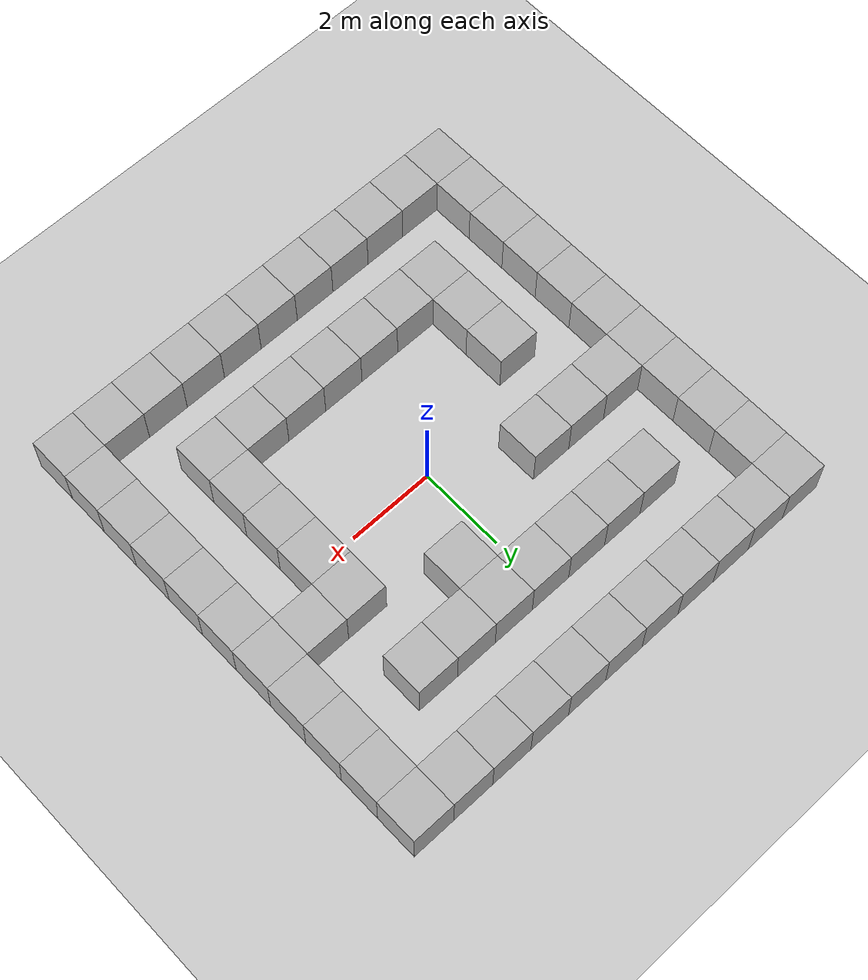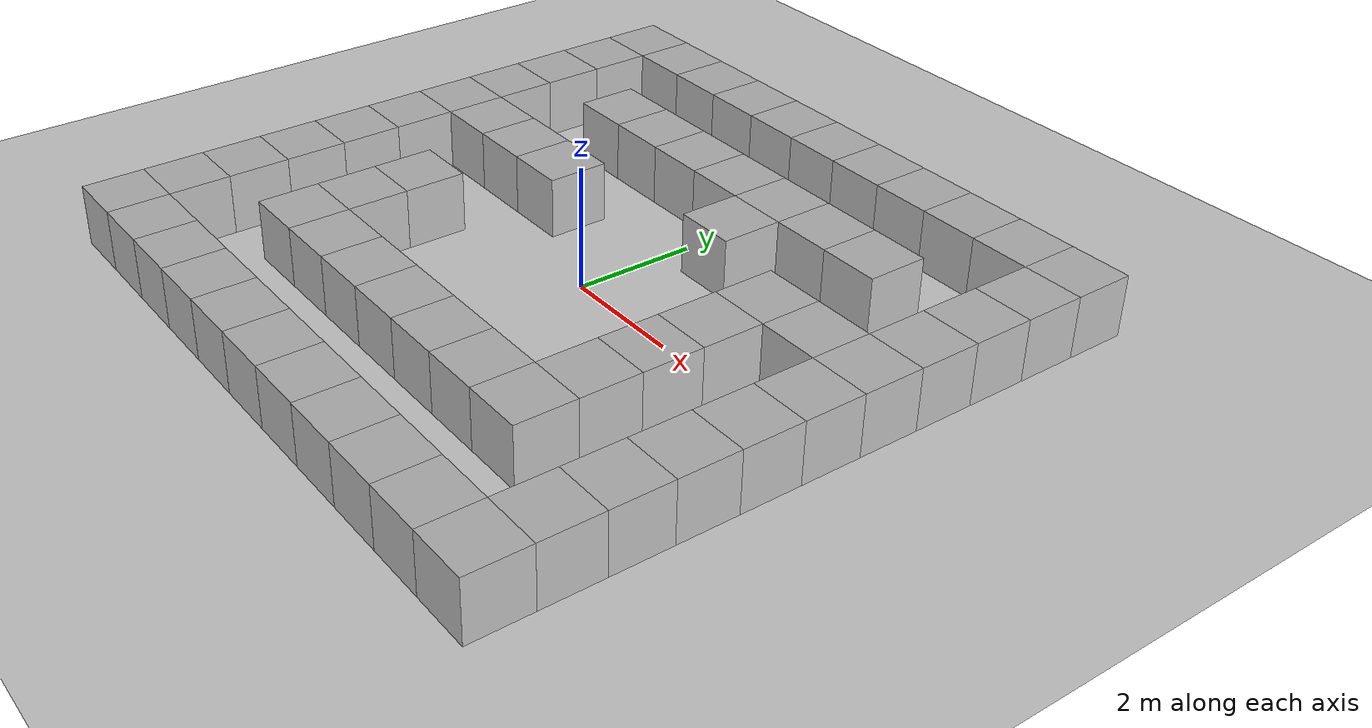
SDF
<?xml version="1.0" ?>
<sdf version="1.6">
  <world name="maze_world">

  <plugin name="gazebo_ros_init" filename="libgazebo_ros_init.so"/>
  <plugin name="gazebo_ros_factory" filename="libgazebo_ros_factory.so"/>

  <include>
    <uri>model://ground_plane</uri>
  </include>

  <include>
    <uri>model://sun</uri>
  </include>

    <model name='wall_-5.0_-5.0'>
      <static>true</static>
      <link name='link'>
        <pose>-5.0 -5.0 0.5 0 0 0</pose>
        <collision name='collision'>
          <geometry>
            <box><size>1.0 1.0 1</size></box>
          </geometry>
        </collision>
        <visual name='visual'>
          <geometry>
            <box><size>1.0 1.0 1</size></box>
          </geometry>
        </visual>
      </link>
    </model>

    <model name='wall_-4.0_-5.0'>
      <static>true</static>
      <link name='link'>
        <pose>-4.0 -5.0 0.5 0 0 0</pose>
        <collision name='collision'>
          <geometry>
            <box><size>1.0 1.0 1</size></box>
          </geometry>
        </collision>
        <visual name='visual'>
          <geometry>
            <box><size>1.0 1.0 1</size></box>
          </geometry>
        </visual>
      </link>
    </model>

    <model name='wall_-3.0_-5.0'>
      <static>true</static>
      <link name='link'>
        <pose>-3.0 -5.0 0.5 0 0 0</pose>
        <collision name='collision'>
          <geometry>
            <box><size>1.0 1.0 1</size></box>
          </geometry>
        </collision>
        <visual name='visual'>
          <geometry>
            <box><size>1.0 1.0 1</size></box>
          </geometry>
        </visual>
      </link>
    </model>

    <model name='wall_-2.0_-5.0'>
      <static>true</static>
      <link name='link'>
        <pose>-2.0 -5.0 0.5 0 0 0</pose>
        <collision name='collision'>
          <geometry>
            <box><size>1.0 1.0 1</size></box>
          </geometry>
        </collision>
        <visual name='visual'>
          <geometry>
            <box><size>1.0 1.0 1</size></box>
          </geometry>
        </visual>
      </link>
    </model>

    <model name='wall_-1.0_-5.0'>
      <static>true</static>
      <link name='link'>
        <pose>-1.0 -5.0 0.5 0 0 0</pose>
        <collision name='collision'>
          <geometry>
            <box><size>1.0 1.0 1</size></box>
          </geometry>
        </collision>
        <visual name='visual'>
          <geometry>
            <box><size>1.0 1.0 1</size></box>
          </geometry>
        </visual>
      </link>
    </model>

    <model name='wall_0.0_-5.0'>
      <static>true</static>
      <link name='link'>
        <pose>0.0 -5.0 0.5 0 0 0</pose>
        <collision name='collision'>
          <geometry>
            <box><size>1.0 1.0 1</size></box>
          </geometry>
        </collision>
        <visual name='visual'>
          <geometry>
            <box><size>1.0 1.0 1</size></box>
          </geometry>
        </visual>
      </link>
    </model>

    <model name='wall_1.0_-5.0'>
      <static>true</static>
      <link name='link'>
        <pose>1.0 -5.0 0.5 0 0 0</pose>
        <collision name='collision'>
          <geometry>
            <box><size>1.0 1.0 1</size></box>
          </geometry>
        </collision>
        <visual name='visual'>
          <geometry>
            <box><size>1.0 1.0 1</size></box>
          </geometry>
        </visual>
      </link>
    </model>

    <model name='wall_2.0_-5.0'>
      <static>true</static>
      <link name='link'>
        <pose>2.0 -5.0 0.5 0 0 0</pose>
        <collision name='collision'>
          <geometry>
            <box><size>1.0 1.0 1</size></box>
          </geometry>
        </collision>
        <visual name='visual'>
          <geometry>
            <box><size>1.0 1.0 1</size></box>
          </geometry>
        </visual>
      </link>
    </model>

    <model name='wall_3.0_-5.0'>
      <static>true</static>
      <link name='link'>
        <pose>3.0 -5.0 0.5 0 0 0</pose>
        <collision name='collision'>
          <geometry>
            <box><size>1.0 1.0 1</size></box>
          </geometry>
        </collision>
        <visual name='visual'>
          <geometry>
            <box><size>1.0 1.0 1</size></box>
          </geometry>
        </visual>
      </link>
    </model>

    <model name='wall_4.0_-5.0'>
      <static>true</static>
      <link name='link'>
        <pose>4.0 -5.0 0.5 0 0 0</pose>
        <collision name='collision'>
          <geometry>
            <box><size>1.0 1.0 1</size></box>
          </geometry>
        </collision>
        <visual name='visual'>
          <geometry>
            <box><size>1.0 1.0 1</size></box>
          </geometry>
        </visual>
      </link>
    </model>

    <model name='wall_5.0_-5.0'>
      <static>true</static>
      <link name='link'>
        <pose>5.0 -5.0 0.5 0 0 0</pose>
        <collision name='collision'>
          <geometry>
            <box><size>1.0 1.0 1</size></box>
          </geometry>
        </collision>
        <visual name='visual'>
          <geometry>
            <box><size>1.0 1.0 1</size></box>
          </geometry>
        </visual>
      </link>
    </model>

    <model name='wall_-5.0_-4.0'>
      <static>true</static>
      <link name='link'>
        <pose>-5.0 -4.0 0.5 0 0 0</pose>
        <collision name='collision'>
          <geometry>
            <box><size>1.0 1.0 1</size></box>
          </geometry>
        </collision>
        <visual name='visual'>
          <geometry>
            <box><size>1.0 1.0 1</size></box>
          </geometry>
        </visual>
      </link>
    </model>

    <model name='wall_5.0_-4.0'>
      <static>true</static>
      <link name='link'>
        <pose>5.0 -4.0 0.5 0 0 0</pose>
        <collision name='collision'>
          <geometry>
            <box><size>1.0 1.0 1</size></box>
          </geometry>
        </collision>
        <visual name='visual'>
          <geometry>
            <box><size>1.0 1.0 1</size></box>
          </geometry>
        </visual>
      </link>
    </model>

    <model name='wall_-5.0_-3.0'>
      <static>true</static>
      <link name='link'>
        <pose>-5.0 -3.0 0.5 0 0 0</pose>
        <collision name='collision'>
          <geometry>
            <box><size>1.0 1.0 1</size></box>
          </geometry>
        </collision>
        <visual name='visual'>
          <geometry>
            <box><size>1.0 1.0 1</size></box>
          </geometry>
        </visual>
      </link>
    </model>

    <model name='wall_-3.0_-3.0'>
      <static>true</static>
      <link name='link'>
        <pose>-3.0 -3.0 0.5 0 0 0</pose>
        <collision name='collision'>
          <geometry>
            <box><size>1.0 1.0 1</size></box>
          </geometry>
        </collision>
        <visual name='visual'>
          <geometry>
            <box><size>1.0 1.0 1</size></box>
          </geometry>
        </visual>
      </link>
    </model>

    <model name='wall_-2.0_-3.0'>
      <static>true</static>
      <link name='link'>
        <pose>-2.0 -3.0 0.5 0 0 0</pose>
        <collision name='collision'>
          <geometry>
            <box><size>1.0 1.0 1</size></box>
          </geometry>
        </collision>
        <visual name='visual'>
          <geometry>
            <box><size>1.0 1.0 1</size></box>
          </geometry>
        </visual>
      </link>
    </model>

    <model name='wall_-1.0_-3.0'>
      <static>true</static>
      <link name='link'>
        <pose>-1.0 -3.0 0.5 0 0 0</pose>
        <collision name='collision'>
          <geometry>
            <box><size>1.0 1.0 1</size></box>
          </geometry>
        </collision>
        <visual name='visual'>
          <geometry>
            <box><size>1.0 1.0 1</size></box>
          </geometry>
        </visual>
      </link>
    </model>

    <model name='wall_0.0_-3.0'>
      <static>true</static>
      <link name='link'>
        <pose>0.0 -3.0 0.5 0 0 0</pose>
        <collision name='collision'>
          <geometry>
            <box><size>1.0 1.0 1</size></box>
          </geometry>
        </collision>
        <visual name='visual'>
          <geometry>
            <box><size>1.0 1.0 1</size></box>
          </geometry>
        </visual>
      </link>
    </model>

    <model name='wall_1.0_-3.0'>
      <static>true</static>
      <link name='link'>
        <pose>1.0 -3.0 0.5 0 0 0</pose>
        <collision name='collision'>
          <geometry>
            <box><size>1.0 1.0 1</size></box>
          </geometry>
        </collision>
        <visual name='visual'>
          <geometry>
            <box><size>1.0 1.0 1</size></box>
          </geometry>
        </visual>
      </link>
    </model>

    <model name='wall_2.0_-3.0'>
      <static>true</static>
      <link name='link'>
        <pose>2.0 -3.0 0.5 0 0 0</pose>
        <collision name='collision'>
          <geometry>
            <box><size>1.0 1.0 1</size></box>
          </geometry>
        </collision>
        <visual name='visual'>
          <geometry>
            <box><size>1.0 1.0 1</size></box>
          </geometry>
        </visual>
      </link>
    </model>

    <model name='wall_3.0_-3.0'>
      <static>true</static>
      <link name='link'>
        <pose>3.0 -3.0 0.5 0 0 0</pose>
        <collision name='collision'>
          <geometry>
            <box><size>1.0 1.0 1</size></box>
          </geometry>
        </collision>
        <visual name='visual'>
          <geometry>
            <box><size>1.0 1.0 1</size></box>
          </geometry>
        </visual>
      </link>
    </model>

    <model name='wall_5.0_-3.0'>
      <static>true</static>
      <link name='link'>
        <pose>5.0 -3.0 0.5 0 0 0</pose>
        <collision name='collision'>
          <geometry>
            <box><size>1.0 1.0 1</size></box>
          </geometry>
        </collision>
        <visual name='visual'>
          <geometry>
            <box><size>1.0 1.0 1</size></box>
          </geometry>
        </visual>
      </link>
    </model>

    <model name='wall_-5.0_-2.0'>
      <static>true</static>
      <link name='link'>
        <pose>-5.0 -2.0 0.5 0 0 0</pose>
        <collision name='collision'>
          <geometry>
            <box><size>1.0 1.0 1</size></box>
          </geometry>
        </collision>
        <visual name='visual'>
          <geometry>
            <box><size>1.0 1.0 1</size></box>
          </geometry>
        </visual>
      </link>
    </model>

    <model name='wall_-3.0_-2.0'>
      <static>true</static>
      <link name='link'>
        <pose>-3.0 -2.0 0.5 0 0 0</pose>
        <collision name='collision'>
          <geometry>
            <box><size>1.0 1.0 1</size></box>
          </geometry>
        </collision>
        <visual name='visual'>
          <geometry>
            <box><size>1.0 1.0 1</size></box>
          </geometry>
        </visual>
      </link>
    </model>

    <model name='wall_3.0_-2.0'>
      <static>true</static>
      <link name='link'>
        <pose>3.0 -2.0 0.5 0 0 0</pose>
        <collision name='collision'>
          <geometry>
            <box><size>1.0 1.0 1</size></box>
          </geometry>
        </collision>
        <visual name='visual'>
          <geometry>
            <box><size>1.0 1.0 1</size></box>
          </geometry>
        </visual>
      </link>
    </model>

    <model name='wall_5.0_-2.0'>
      <static>true</static>
      <link name='link'>
        <pose>5.0 -2.0 0.5 0 0 0</pose>
        <collision name='collision'>
          <geometry>
            <box><size>1.0 1.0 1</size></box>
          </geometry>
        </collision>
        <visual name='visual'>
          <geometry>
            <box><size>1.0 1.0 1</size></box>
          </geometry>
        </visual>
      </link>
    </model>

    <model name='wall_-5.0_-1.0'>
      <static>true</static>
      <link name='link'>
        <pose>-5.0 -1.0 0.5 0 0 0</pose>
        <collision name='collision'>
          <geometry>
            <box><size>1.0 1.0 1</size></box>
          </geometry>
        </collision>
        <visual name='visual'>
          <geometry>
            <box><size>1.0 1.0 1</size></box>
          </geometry>
        </visual>
      </link>
    </model>

    <model name='wall_-3.0_-1.0'>
      <static>true</static>
      <link name='link'>
        <pose>-3.0 -1.0 0.5 0 0 0</pose>
        <collision name='collision'>
          <geometry>
            <box><size>1.0 1.0 1</size></box>
          </geometry>
        </collision>
        <visual name='visual'>
          <geometry>
            <box><size>1.0 1.0 1</size></box>
          </geometry>
        </visual>
      </link>
    </model>

    <model name='wall_3.0_-1.0'>
      <static>true</static>
      <link name='link'>
        <pose>3.0 -1.0 0.5 0 0 0</pose>
        <collision name='collision'>
          <geometry>
            <box><size>1.0 1.0 1</size></box>
          </geometry>
        </collision>
        <visual name='visual'>
          <geometry>
            <box><size>1.0 1.0 1</size></box>
          </geometry>
        </visual>
      </link>
    </model>

    <model name='wall_5.0_-1.0'>
      <static>true</static>
      <link name='link'>
        <pose>5.0 -1.0 0.5 0 0 0</pose>
        <collision name='collision'>
          <geometry>
            <box><size>1.0 1.0 1</size></box>
          </geometry>
        </collision>
        <visual name='visual'>
          <geometry>
            <box><size>1.0 1.0 1</size></box>
          </geometry>
        </visual>
      </link>
    </model>

    <model name='wall_-5.0_0.0'>
      <static>true</static>
      <link name='link'>
        <pose>-5.0 0.0 0.5 0 0 0</pose>
        <collision name='collision'>
          <geometry>
            <box><size>1.0 1.0 1</size></box>
          </geometry>
        </collision>
        <visual name='visual'>
          <geometry>
            <box><size>1.0 1.0 1</size></box>
          </geometry>
        </visual>
      </link>
    </model>

    <model name='wall_3.0_0.0'>
      <static>true</static>
      <link name='link'>
        <pose>3.0 0.0 0.5 0 0 0</pose>
        <collision name='collision'>
          <geometry>
            <box><size>1.0 1.0 1</size></box>
          </geometry>
        </collision>
        <visual name='visual'>
          <geometry>
            <box><size>1.0 1.0 1</size></box>
          </geometry>
        </visual>
      </link>
    </model>

    <model name='wall_5.0_0.0'>
      <static>true</static>
      <link name='link'>
        <pose>5.0 0.0 0.5 0 0 0</pose>
        <collision name='collision'>
          <geometry>
            <box><size>1.0 1.0 1</size></box>
          </geometry>
        </collision>
        <visual name='visual'>
          <geometry>
            <box><size>1.0 1.0 1</size></box>
          </geometry>
        </visual>
      </link>
    </model>

    <model name='wall_-5.0_1.0'>
      <static>true</static>
      <link name='link'>
        <pose>-5.0 1.0 0.5 0 0 0</pose>
        <collision name='collision'>
          <geometry>
            <box><size>1.0 1.0 1</size></box>
          </geometry>
        </collision>
        <visual name='visual'>
          <geometry>
            <box><size>1.0 1.0 1</size></box>
          </geometry>
        </visual>
      </link>
    </model>

    <model name='wall_-4.0_1.0'>
      <static>true</static>
      <link name='link'>
        <pose>-4.0 1.0 0.5 0 0 0</pose>
        <collision name='collision'>
          <geometry>
            <box><size>1.0 1.0 1</size></box>
          </geometry>
        </collision>
        <visual name='visual'>
          <geometry>
            <box><size>1.0 1.0 1</size></box>
          </geometry>
        </visual>
      </link>
    </model>

    <model name='wall_-3.0_1.0'>
      <static>true</static>
      <link name='link'>
        <pose>-3.0 1.0 0.5 0 0 0</pose>
        <collision name='collision'>
          <geometry>
            <box><size>1.0 1.0 1</size></box>
          </geometry>
        </collision>
        <visual name='visual'>
          <geometry>
            <box><size>1.0 1.0 1</size></box>
          </geometry>
        </visual>
      </link>
    </model>

    <model name='wall_-2.0_1.0'>
      <static>true</static>
      <link name='link'>
        <pose>-2.0 1.0 0.5 0 0 0</pose>
        <collision name='collision'>
          <geometry>
            <box><size>1.0 1.0 1</size></box>
          </geometry>
        </collision>
        <visual name='visual'>
          <geometry>
            <box><size>1.0 1.0 1</size></box>
          </geometry>
        </visual>
      </link>
    </model>

    <model name='wall_3.0_1.0'>
      <static>true</static>
      <link name='link'>
        <pose>3.0 1.0 0.5 0 0 0</pose>
        <collision name='collision'>
          <geometry>
            <box><size>1.0 1.0 1</size></box>
          </geometry>
        </collision>
        <visual name='visual'>
          <geometry>
            <box><size>1.0 1.0 1</size></box>
          </geometry>
        </visual>
      </link>
    </model>

    <model name='wall_4.0_1.0'>
      <static>true</static>
      <link name='link'>
        <pose>4.0 1.0 0.5 0 0 0</pose>
        <collision name='collision'>
          <geometry>
            <box><size>1.0 1.0 1</size></box>
          </geometry>
        </collision>
        <visual name='visual'>
          <geometry>
            <box><size>1.0 1.0 1</size></box>
          </geometry>
        </visual>
      </link>
    </model>

    <model name='wall_5.0_1.0'>
      <static>true</static>
      <link name='link'>
        <pose>5.0 1.0 0.5 0 0 0</pose>
        <collision name='collision'>
          <geometry>
            <box><size>1.0 1.0 1</size></box>
          </geometry>
        </collision>
        <visual name='visual'>
          <geometry>
            <box><size>1.0 1.0 1</size></box>
          </geometry>
        </visual>
      </link>
    </model>

    <model name='wall_-5.0_2.0'>
      <static>true</static>
      <link name='link'>
        <pose>-5.0 2.0 0.5 0 0 0</pose>
        <collision name='collision'>
          <geometry>
            <box><size>1.0 1.0 1</size></box>
          </geometry>
        </collision>
        <visual name='visual'>
          <geometry>
            <box><size>1.0 1.0 1</size></box>
          </geometry>
        </visual>
      </link>
    </model>

    <model name='wall_1.0_2.0'>
      <static>true</static>
      <link name='link'>
        <pose>1.0 2.0 0.5 0 0 0</pose>
        <collision name='collision'>
          <geometry>
            <box><size>1.0 1.0 1</size></box>
          </geometry>
        </collision>
        <visual name='visual'>
          <geometry>
            <box><size>1.0 1.0 1</size></box>
          </geometry>
        </visual>
      </link>
    </model>

    <model name='wall_5.0_2.0'>
      <static>true</static>
      <link name='link'>
        <pose>5.0 2.0 0.5 0 0 0</pose>
        <collision name='collision'>
          <geometry>
            <box><size>1.0 1.0 1</size></box>
          </geometry>
        </collision>
        <visual name='visual'>
          <geometry>
            <box><size>1.0 1.0 1</size></box>
          </geometry>
        </visual>
      </link>
    </model>

    <model name='wall_-5.0_3.0'>
      <static>true</static>
      <link name='link'>
        <pose>-5.0 3.0 0.5 0 0 0</pose>
        <collision name='collision'>
          <geometry>
            <box><size>1.0 1.0 1</size></box>
          </geometry>
        </collision>
        <visual name='visual'>
          <geometry>
            <box><size>1.0 1.0 1</size></box>
          </geometry>
        </visual>
      </link>
    </model>

    <model name='wall_-3.0_3.0'>
      <static>true</static>
      <link name='link'>
        <pose>-3.0 3.0 0.5 0 0 0</pose>
        <collision name='collision'>
          <geometry>
            <box><size>1.0 1.0 1</size></box>
          </geometry>
        </collision>
        <visual name='visual'>
          <geometry>
            <box><size>1.0 1.0 1</size></box>
          </geometry>
        </visual>
      </link>
    </model>

    <model name='wall_-2.0_3.0'>
      <static>true</static>
      <link name='link'>
        <pose>-2.0 3.0 0.5 0 0 0</pose>
        <collision name='collision'>
          <geometry>
            <box><size>1.0 1.0 1</size></box>
          </geometry>
        </collision>
        <visual name='visual'>
          <geometry>
            <box><size>1.0 1.0 1</size></box>
          </geometry>
        </visual>
      </link>
    </model>

    <model name='wall_-1.0_3.0'>
      <static>true</static>
      <link name='link'>
        <pose>-1.0 3.0 0.5 0 0 0</pose>
        <collision name='collision'>
          <geometry>
            <box><size>1.0 1.0 1</size></box>
          </geometry>
        </collision>
        <visual name='visual'>
          <geometry>
            <box><size>1.0 1.0 1</size></box>
          </geometry>
        </visual>
      </link>
    </model>

    <model name='wall_0.0_3.0'>
      <static>true</static>
      <link name='link'>
        <pose>0.0 3.0 0.5 0 0 0</pose>
        <collision name='collision'>
          <geometry>
            <box><size>1.0 1.0 1</size></box>
          </geometry>
        </collision>
        <visual name='visual'>
          <geometry>
            <box><size>1.0 1.0 1</size></box>
          </geometry>
        </visual>
      </link>
    </model>

    <model name='wall_1.0_3.0'>
      <static>true</static>
      <link name='link'>
        <pose>1.0 3.0 0.5 0 0 0</pose>
        <collision name='collision'>
          <geometry>
            <box><size>1.0 1.0 1</size></box>
          </geometry>
        </collision>
        <visual name='visual'>
          <geometry>
            <box><size>1.0 1.0 1</size></box>
          </geometry>
        </visual>
      </link>
    </model>

    <model name='wall_2.0_3.0'>
      <static>true</static>
      <link name='link'>
        <pose>2.0 3.0 0.5 0 0 0</pose>
        <collision name='collision'>
          <geometry>
            <box><size>1.0 1.0 1</size></box>
          </geometry>
        </collision>
        <visual name='visual'>
          <geometry>
            <box><size>1.0 1.0 1</size></box>
          </geometry>
        </visual>
      </link>
    </model>

    <model name='wall_3.0_3.0'>
      <static>true</static>
      <link name='link'>
        <pose>3.0 3.0 0.5 0 0 0</pose>
        <collision name='collision'>
          <geometry>
            <box><size>1.0 1.0 1</size></box>
          </geometry>
        </collision>
        <visual name='visual'>
          <geometry>
            <box><size>1.0 1.0 1</size></box>
          </geometry>
        </visual>
      </link>
    </model>

    <model name='wall_5.0_3.0'>
      <static>true</static>
      <link name='link'>
        <pose>5.0 3.0 0.5 0 0 0</pose>
        <collision name='collision'>
          <geometry>
            <box><size>1.0 1.0 1</size></box>
          </geometry>
        </collision>
        <visual name='visual'>
          <geometry>
            <box><size>1.0 1.0 1</size></box>
          </geometry>
        </visual>
      </link>
    </model>

    <model name='wall_-5.0_4.0'>
      <static>true</static>
      <link name='link'>
        <pose>-5.0 4.0 0.5 0 0 0</pose>
        <collision name='collision'>
          <geometry>
            <box><size>1.0 1.0 1</size></box>
          </geometry>
        </collision>
        <visual name='visual'>
          <geometry>
            <box><size>1.0 1.0 1</size></box>
          </geometry>
        </visual>
      </link>
    </model>

    <model name='wall_5.0_4.0'>
      <static>true</static>
      <link name='link'>
        <pose>5.0 4.0 0.5 0 0 0</pose>
        <collision name='collision'>
          <geometry>
            <box><size>1.0 1.0 1</size></box>
          </geometry>
        </collision>
        <visual name='visual'>
          <geometry>
            <box><size>1.0 1.0 1</size></box>
          </geometry>
        </visual>
      </link>
    </model>

    <model name='wall_-5.0_5.0'>
      <static>true</static>
      <link name='link'>
        <pose>-5.0 5.0 0.5 0 0 0</pose>
        <collision name='collision'>
          <geometry>
            <box><size>1.0 1.0 1</size></box>
          </geometry>
        </collision>
        <visual name='visual'>
          <geometry>
            <box><size>1.0 1.0 1</size></box>
          </geometry>
        </visual>
      </link>
    </model>

    <model name='wall_-4.0_5.0'>
      <static>true</static>
      <link name='link'>
        <pose>-4.0 5.0 0.5 0 0 0</pose>
        <collision name='collision'>
          <geometry>
            <box><size>1.0 1.0 1</size></box>
          </geometry>
        </collision>
        <visual name='visual'>
          <geometry>
            <box><size>1.0 1.0 1</size></box>
          </geometry>
        </visual>
      </link>
    </model>

    <model name='wall_-3.0_5.0'>
      <static>true</static>
      <link name='link'>
        <pose>-3.0 5.0 0.5 0 0 0</pose>
        <collision name='collision'>
          <geometry>
            <box><size>1.0 1.0 1</size></box>
          </geometry>
        </collision>
        <visual name='visual'>
          <geometry>
            <box><size>1.0 1.0 1</size></box>
          </geometry>
        </visual>
      </link>
    </model>

    <model name='wall_-2.0_5.0'>
      <static>true</static>
      <link name='link'>
        <pose>-2.0 5.0 0.5 0 0 0</pose>
        <collision name='collision'>
          <geometry>
            <box><size>1.0 1.0 1</size></box>
          </geometry>
        </collision>
        <visual name='visual'>
          <geometry>
            <box><size>1.0 1.0 1</size></box>
          </geometry>
        </visual>
      </link>
    </model>

    <model name='wall_-1.0_5.0'>
      <static>true</static>
      <link name='link'>
        <pose>-1.0 5.0 0.5 0 0 0</pose>
        <collision name='collision'>
          <geometry>
            <box><size>1.0 1.0 1</size></box>
          </geometry>
        </collision>
        <visual name='visual'>
          <geometry>
            <box><size>1.0 1.0 1</size></box>
          </geometry>
        </visual>
      </link>
    </model>

    <model name='wall_0.0_5.0'>
      <static>true</static>
      <link name='link'>
        <pose>0.0 5.0 0.5 0 0 0</pose>
        <collision name='collision'>
          <geometry>
            <box><size>1.0 1.0 1</size></box>
          </geometry>
        </collision>
        <visual name='visual'>
          <geometry>
            <box><size>1.0 1.0 1</size></box>
          </geometry>
        </visual>
      </link>
    </model>

    <model name='wall_1.0_5.0'>
      <static>true</static>
      <link name='link'>
        <pose>1.0 5.0 0.5 0 0 0</pose>
        <collision name='collision'>
          <geometry>
            <box><size>1.0 1.0 1</size></box>
          </geometry>
        </collision>
        <visual name='visual'>
          <geometry>
            <box><size>1.0 1.0 1</size></box>
          </geometry>
        </visual>
      </link>
    </model>

    <model name='wall_2.0_5.0'>
      <static>true</static>
      <link name='link'>
        <pose>2.0 5.0 0.5 0 0 0</pose>
        <collision name='collision'>
          <geometry>
            <box><size>1.0 1.0 1</size></box>
          </geometry>
        </collision>
        <visual name='visual'>
          <geometry>
            <box><size>1.0 1.0 1</size></box>
          </geometry>
        </visual>
      </link>
    </model>

    <model name='wall_3.0_5.0'>
      <static>true</static>
      <link name='link'>
        <pose>3.0 5.0 0.5 0 0 0</pose>
        <collision name='collision'>
          <geometry>
            <box><size>1.0 1.0 1</size></box>
          </geometry>
        </collision>
        <visual name='visual'>
          <geometry>
            <box><size>1.0 1.0 1</size></box>
          </geometry>
        </visual>
      </link>
    </model>

    <model name='wall_4.0_5.0'>
      <static>true</static>
      <link name='link'>
        <pose>4.0 5.0 0.5 0 0 0</pose>
        <collision name='collision'>
          <geometry>
            <box><size>1.0 1.0 1</size></box>
          </geometry>
        </collision>
        <visual name='visual'>
          <geometry>
            <box><size>1.0 1.0 1</size></box>
          </geometry>
        </visual>
      </link>
    </model>

    <model name='wall_5.0_5.0'>
      <static>true</static>
      <link name='link'>
        <pose>5.0 5.0 0.5 0 0 0</pose>
        <collision name='collision'>
          <geometry>
            <box><size>1.0 1.0 1</size></box>
          </geometry>
        </collision>
        <visual name='visual'>
          <geometry>
            <box><size>1.0 1.0 1</size></box>
          </geometry>
        </visual>
      </link>
    </model>

  </world>
</sdf>
